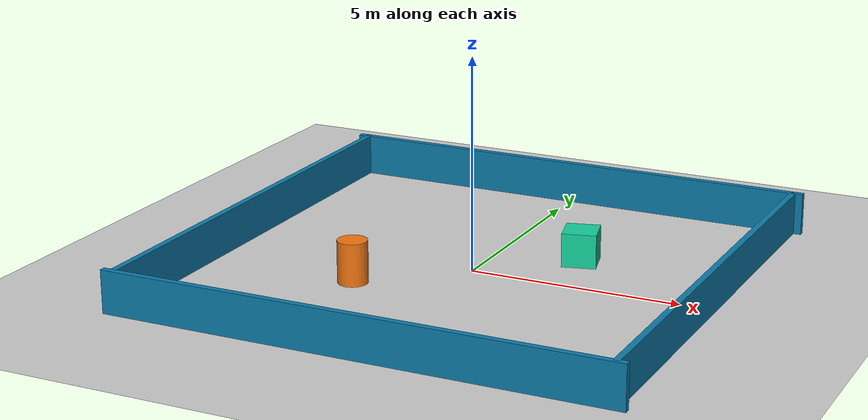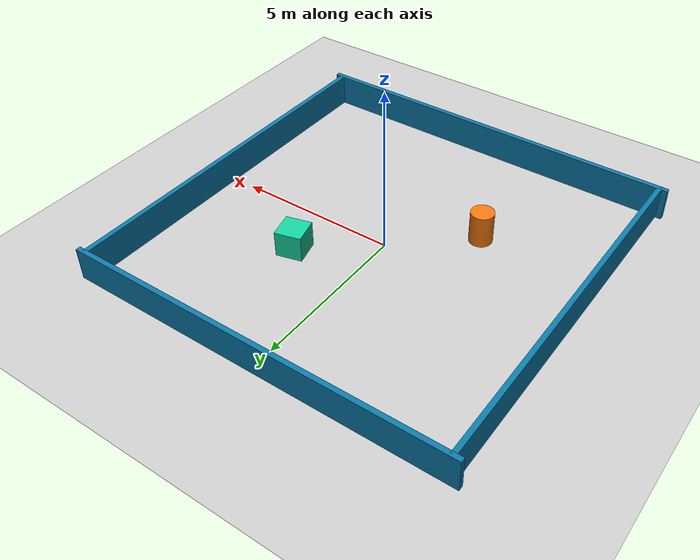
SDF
<?xml version="1.0"?>
<sdf version="1.6">
  <world name="wildebeest_test_arena">
    <physics name="ode" type="ode">
      <max_step_size>0.001</max_step_size>
      <real_time_update_rate>1000</real_time_update_rate>
    </physics>
    <scene>
      <ambient>0.35 0.42 0.50 1</ambient>
      <background>0.015 0.025 0.045 1</background>
      <shadows>true</shadows>
    </scene>
    <include><uri>model://sun</uri></include>
    <include><uri>model://ground_plane</uri></include>

    <model name="north_wall"><static>true</static><pose>0 5.75 0.5 0 0 0</pose><link name="link"><collision name="collision"><geometry><box><size>12 0.15 1</size></box></geometry></collision><visual name="visual"><geometry><box><size>12 0.15 1</size></box></geometry><material><ambient>0.03 0.28 0.42 1</ambient><diffuse>0.04 0.48 0.66 1</diffuse></material></visual></link></model>
    <model name="south_wall"><static>true</static><pose>0 -5.75 0.5 0 0 0</pose><link name="link"><collision name="collision"><geometry><box><size>12 0.15 1</size></box></geometry></collision><visual name="visual"><geometry><box><size>12 0.15 1</size></box></geometry><material><ambient>0.03 0.28 0.42 1</ambient><diffuse>0.04 0.48 0.66 1</diffuse></material></visual></link></model>
    <model name="east_wall"><static>true</static><pose>5.75 0 0.5 0 0 0</pose><link name="link"><collision name="collision"><geometry><box><size>0.15 11.5 1</size></box></geometry></collision><visual name="visual"><geometry><box><size>0.15 11.5 1</size></box></geometry><material><ambient>0.03 0.28 0.42 1</ambient><diffuse>0.04 0.48 0.66 1</diffuse></material></visual></link></model>
    <model name="west_wall"><static>true</static><pose>-5.75 0 0.5 0 0 0</pose><link name="link"><collision name="collision"><geometry><box><size>0.15 11.5 1</size></box></geometry></collision><visual name="visual"><geometry><box><size>0.15 11.5 1</size></box></geometry><material><ambient>0.03 0.28 0.42 1</ambient><diffuse>0.04 0.48 0.66 1</diffuse></material></visual></link></model>

    <model name="training_crate"><static>true</static><pose>2.0 1.6 0.4 0 0 0.25</pose><link name="link"><collision name="collision"><geometry><box><size>0.8 0.8 0.8</size></box></geometry></collision><visual name="visual"><geometry><box><size>0.8 0.8 0.8</size></box></geometry><material><ambient>0.04 0.50 0.38 1</ambient><diffuse>0.08 0.82 0.62 1</diffuse></material></visual></link></model>
    <model name="training_column"><static>true</static><pose>-2.1 -1.8 0.5 0 0 0</pose><link name="link"><collision name="collision"><geometry><cylinder><radius>0.35</radius><length>1.0</length></cylinder></geometry></collision><visual name="visual"><geometry><cylinder><radius>0.35</radius><length>1.0</length></cylinder></geometry><material><ambient>0.65 0.28 0.03 1</ambient><diffuse>0.95 0.46 0.06 1</diffuse></material></visual></link></model>
  </world>
</sdf>
